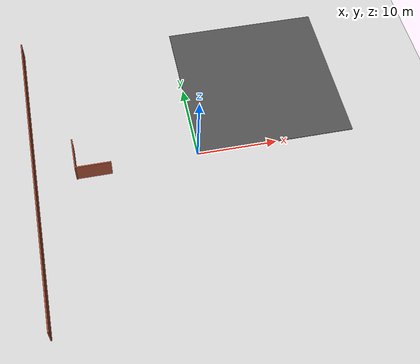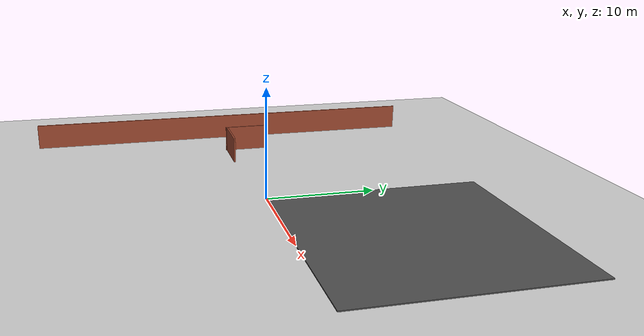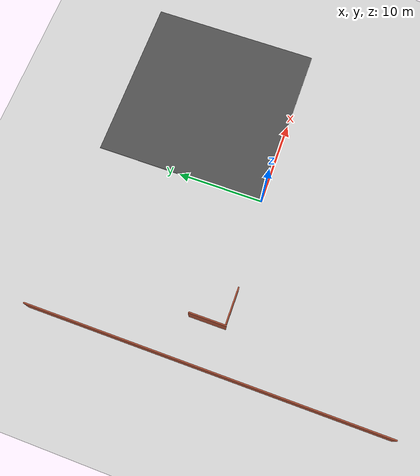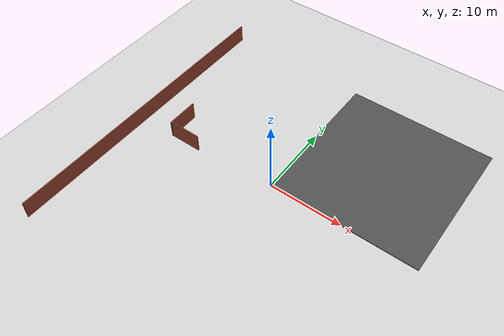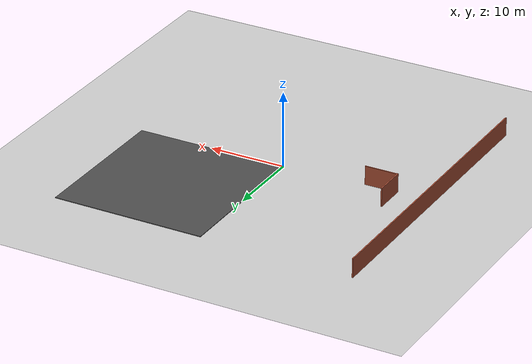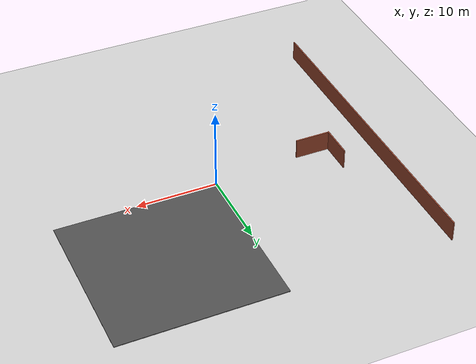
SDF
<sdf version="1.6">
 <world name="default">
  <model name="ground_plane">
   <static>1</static>
   <link name="link">
    <collision name="collision">
     <geometry><plane><normal>0 0 1</normal><size>100 100</size></plane></geometry>
     <surface><friction><ode><mu>100</mu><mu2>50</mu2></ode></friction></surface>
    </collision>
    <visual name="visual">
     <cast_shadows>0</cast_shadows>
     <geometry><plane><normal>0 0 1</normal><size>100 100</size></plane></geometry>
     <material>
      <script><uri>file://media/materials/scripts/gazebo.material</uri><name>Gazebo/Grey</name></script>
     </material>
    </visual>
   </link>
  </model>
  <model name="asphalt_plane">
   <static>1</static>
   <link name="link">
    <collision name="collision"><geometry><box><size>20 20 0.1</size></box></geometry></collision>
    <visual name="visual">
     <cast_shadows>0</cast_shadows>
     <geometry><box><size>20 20 0.1</size></box></geometry>
     <material>
      <script>
       <uri>model://asphalt_plane/materials/scripts</uri>
       <uri>model://asphalt_plane/materials/textures</uri>
       <name>vrc/asphalt</name>
      </script>
     </material>
    </visual>
   </link>
   <pose>10 10 0 0 -0 0</pose>
  </model>
  <model name="brick_longwalll_0">
   <pose>-20.0177 -0.255752 0 0 0 -1.57092</pose>
   <link name="brick_longwall_wall_0">
    <collision name="brick_longwall_wall_0_Collision">
     <geometry><box><size>40.5 0.15 2.5</size></box></geometry>
     <pose>0 0 1.25 0 -0 0</pose>
    </collision>
    <visual name="brick_longwall_wall_0_Visual">
     <pose>0 0 1.25 0 -0 0</pose>
     <geometry><box><size>40.5 0.15 2.5</size></box></geometry>
     <material>
      <script><uri>file://media/materials/scripts/gazebo.material</uri><name>Gazebo/Bricks</name></script>
      <ambient>1 1 1 1</ambient>
     </material>
    </visual>
    <pose>1e-06 0 0 0 -0 0</pose>
   </link>
   <static>1</static>
  </model>
  <model name="worlds_1_clone_1_clone_clone_0">
   <pose>-15.0769 1.18275 0 0 -0 0</pose>
   <link name="brick_longwall_wall_0">
    <collision name="brick_longwall_wall_0_Collision">
     <geometry><box><size>4.25 0.15 2.5</size></box></geometry>
     <pose>0 0 1.25 0 -0 0</pose>
    </collision>
    <visual name="brick_longwall_wall_0_Visual">
     <pose>0 0 1.25 0 -0 0</pose>
     <geometry><box><size>4.25 0.15 2.5</size></box></geometry>
     <material>
      <script><uri>file://media/materials/scripts/gazebo.material</uri><name>Gazebo/Bricks</name></script>
      <ambient>1 1 1 1</ambient>
     </material>
    </visual>
    <pose>0 -0 0 0 -0 1.5708</pose>
   </link>
   <static>1</static>
  </model>
  <model name="worlds_1_clone_0_clone_clone_0_clone_clone_0_clone">
   <pose>-12.8938 -0.809745 0 0 0 -1.57092</pose>
   <link name="brick_longwall_wall_0">
    <collision name="brick_longwall_wall_0_Collision">
     <geometry><box><size>4.25 0.15 2.5</size></box></geometry>
     <pose>0 0 1.25 0 -0 0</pose>
    </collision>
    <visual name="brick_longwall_wall_0_Visual">
     <pose>0 0 1.25 0 -0 0</pose>
     <geometry><box><size>4.25 0.15 2.5</size></box></geometry>
     <material>
      <script><uri>file://media/materials/scripts/gazebo.material</uri><name>Gazebo/Bricks</name></script>
      <ambient>1 1 1 1</ambient>
     </material>
    </visual>
    <pose>0 -0 0 0 -0 1.5708</pose>
   </link>
   <static>1</static>
  </model>
 </world>
</sdf>
